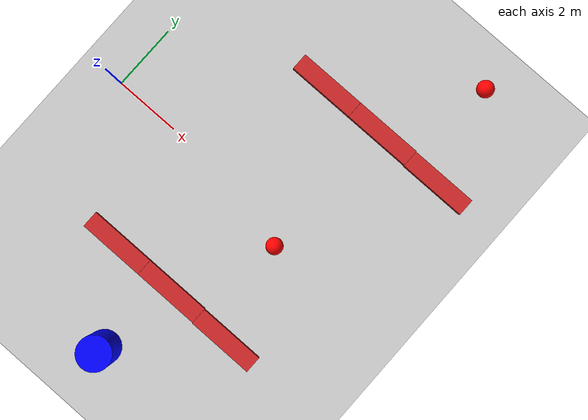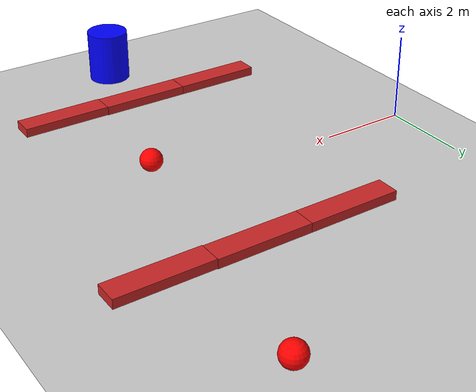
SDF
<sdf version="1.7">
 <world name="default">
  <light name="sun" type="directional">
   <pose>0 0 10 0 -0 0</pose>
   <diffuse>0.8 0.8 0.8 1</diffuse>
   <specular>0.2 0.2 0.2 1</specular>
   <attenuation>
    <range>1000</range>
    <constant>0.9</constant>
    <linear>0.01</linear>
    <quadratic>0.001</quadratic>
   </attenuation>
   <direction>-0.5 0.1 -0.9</direction>
   <spot><inner_angle>0</inner_angle><outer_angle>0</outer_angle><falloff>0</falloff></spot>
  </light>
  <model name="ground_plane">
   <static>1</static>
   <link name="link">
    <collision name="collision">
     <geometry><plane><normal>0 0 1</normal><size>100 100</size></plane></geometry>
     <surface><friction><ode><mu>100</mu><mu2>50</mu2></ode></friction></surface>
    </collision>
    <visual name="visual">
     <cast_shadows>0</cast_shadows>
     <geometry><plane><normal>0 0 1</normal><size>100 100</size></plane></geometry>
     <material>
      <script><uri>file://media/materials/scripts/gazebo.material</uri><name>Gazebo/Grey</name></script>
     </material>
    </visual>
   </link>
  </model>
  <gravity>0 0 -9.8</gravity>
  <magnetic_field>6e-06 2.3e-05 -4.2e-05</magnetic_field>
  <atmosphere type="adiabatic"/>
  <physics type="ode">
   <max_step_size>0.001</max_step_size>
   <real_time_factor>1</real_time_factor>
   <real_time_update_rate>1000</real_time_update_rate>
  </physics>
  <scene><ambient>0.4 0.4 0.4 1</ambient><background>0.7 0.7 0.7 1</background><shadows>1</shadows></scene>
  <audio><device>default</device></audio>
  <spherical_coordinates>
   <surface_model>EARTH_WGS84</surface_model>
   <latitude_deg>0</latitude_deg>
   <longitude_deg>0</longitude_deg>
   <elevation>0</elevation>
   <heading_deg>0</heading_deg>
  </spherical_coordinates>
  <model name="sidewalk">
   <link name="link_0">
    <inertial>
     <mass>1</mass>
     <inertia>
      <ixx>0.166667</ixx>
      <ixy>0</ixy>
      <ixz>0</ixz>
      <iyy>0.166667</iyy>
      <iyz>0</iyz>
      <izz>0.166667</izz>
     </inertia>
    </inertial>
    <pose>-2.32707 -0.694869 0 0 -0 0</pose>
    <visual name="visual">
     <geometry><box><size>2 0.5 0.2</size></box></geometry>
     <material>
      <lighting>1</lighting>
      <script><uri>file://media/materials/scripts/gazebo.material</uri><name>Gazebo/Red</name></script>
      <shader type="pixel"><normal_map>__default__</normal_map></shader>
      <ambient>0 1 0 1</ambient>
      <diffuse>0.7 0.7 0.7 1</diffuse>
      <specular>0.01 0.01 0.01 1</specular>
      <emissive>0 0 0 1</emissive>
     </material>
    </visual>
    <collision name="collision">
     <geometry><box><size>1 1 1</size></box></geometry>
     <surface>
      <friction>
       <ode><mu>1</mu><mu2>1</mu2><fdir1>0 0 0</fdir1><slip1>0</slip1><slip2>0</slip2></ode>
       <torsional>
        <coefficient>1</coefficient>
        <patch_radius>0</patch_radius>
        <surface_radius>0</surface_radius>
        <use_patch_radius>1</use_patch_radius>
        <ode><slip>0</slip></ode>
       </torsional>
      </friction>
      <bounce><restitution_coefficient>0</restitution_coefficient><threshold>1e+06</threshold></bounce>
      <contact>
       <collide_without_contact>0</collide_without_contact>
       <collide_without_contact_bitmask>1</collide_without_contact_bitmask>
       <collide_bitmask>1</collide_bitmask>
       <ode>
        <soft_cfm>0</soft_cfm>
        <soft_erp>0.2</soft_erp>
        <kp>1e+13</kp>
        <kd>1</kd>
        <max_vel>0.01</max_vel>
        <min_depth>0</min_depth>
       </ode>
       <bullet>
        <split_impulse>1</split_impulse>
        <split_impulse_penetration_threshold>-0.01</split_impulse_penetration_threshold>
        <soft_cfm>0</soft_cfm>
        <soft_erp>0.2</soft_erp>
        <kp>1e+13</kp>
        <kd>1</kd>
       </bullet>
      </contact>
     </surface>
    </collision>
   </link>
   <link name="link_0_clone">
    <inertial>
     <mass>1</mass>
     <inertia>
      <ixx>0.166667</ixx>
      <ixy>0</ixy>
      <ixz>0</ixz>
      <iyy>0.166667</iyy>
      <iyz>0</iyz>
      <izz>0.166667</izz>
     </inertia>
    </inertial>
    <pose>-0.324907 -0.694369 0 0 -0 0</pose>
    <visual name="visual">
     <geometry><box><size>2 0.5 0.2</size></box></geometry>
     <material>
      <lighting>1</lighting>
      <script><uri>file://media/materials/scripts/gazebo.material</uri><name>Gazebo/Red</name></script>
      <shader type="pixel"><normal_map>__default__</normal_map></shader>
      <ambient>0 1 0 1</ambient>
      <diffuse>0.7 0.7 0.7 1</diffuse>
      <specular>0.01 0.01 0.01 1</specular>
      <emissive>0 0 0 1</emissive>
     </material>
    </visual>
    <collision name="collision">
     <geometry><box><size>1 1 1</size></box></geometry>
     <surface>
      <friction>
       <ode><mu>1</mu><mu2>1</mu2><fdir1>0 0 0</fdir1><slip1>0</slip1><slip2>0</slip2></ode>
       <torsional>
        <coefficient>1</coefficient>
        <patch_radius>0</patch_radius>
        <surface_radius>0</surface_radius>
        <use_patch_radius>1</use_patch_radius>
        <ode><slip>0</slip></ode>
       </torsional>
      </friction>
      <bounce><restitution_coefficient>0</restitution_coefficient><threshold>1e+06</threshold></bounce>
      <contact>
       <collide_without_contact>0</collide_without_contact>
       <collide_without_contact_bitmask>1</collide_without_contact_bitmask>
       <collide_bitmask>1</collide_bitmask>
       <ode>
        <soft_cfm>0</soft_cfm>
        <soft_erp>0.2</soft_erp>
        <kp>1e+13</kp>
        <kd>1</kd>
        <max_vel>0.01</max_vel>
        <min_depth>0</min_depth>
       </ode>
       <bullet>
        <split_impulse>1</split_impulse>
        <split_impulse_penetration_threshold>-0.01</split_impulse_penetration_threshold>
        <soft_cfm>0</soft_cfm>
        <soft_erp>0.2</soft_erp>
        <kp>1e+13</kp>
        <kd>1</kd>
       </bullet>
      </contact>
     </surface>
    </collision>
   </link>
   <link name="link_0_clone_clone">
    <inertial>
     <mass>1</mass>
     <inertia>
      <ixx>0.166667</ixx>
      <ixy>0</ixy>
      <ixz>0</ixz>
      <iyy>0.166667</iyy>
      <iyz>0</iyz>
      <izz>0.166667</izz>
     </inertia>
    </inertial>
    <pose>1.67628 -0.71217 0 0 -0 0</pose>
    <visual name="visual">
     <geometry><box><size>2 0.5 0.2</size></box></geometry>
     <material>
      <lighting>1</lighting>
      <script><uri>file://media/materials/scripts/gazebo.material</uri><name>Gazebo/Red</name></script>
      <shader type="pixel"><normal_map>__default__</normal_map></shader>
      <ambient>0 1 0 1</ambient>
      <diffuse>0.7 0.7 0.7 1</diffuse>
      <specular>0.01 0.01 0.01 1</specular>
      <emissive>0 0 0 1</emissive>
     </material>
    </visual>
    <collision name="collision">
     <geometry><box><size>1 1 1</size></box></geometry>
     <surface>
      <friction>
       <ode><mu>1</mu><mu2>1</mu2><fdir1>0 0 0</fdir1><slip1>0</slip1><slip2>0</slip2></ode>
       <torsional>
        <coefficient>1</coefficient>
        <patch_radius>0</patch_radius>
        <surface_radius>0</surface_radius>
        <use_patch_radius>1</use_patch_radius>
        <ode><slip>0</slip></ode>
       </torsional>
      </friction>
      <bounce><restitution_coefficient>0</restitution_coefficient><threshold>1e+06</threshold></bounce>
      <contact>
       <collide_without_contact>0</collide_without_contact>
       <collide_without_contact_bitmask>1</collide_without_contact_bitmask>
       <collide_bitmask>1</collide_bitmask>
       <ode>
        <soft_cfm>0</soft_cfm>
        <soft_erp>0.2</soft_erp>
        <kp>1e+13</kp>
        <kd>1</kd>
        <max_vel>0.01</max_vel>
        <min_depth>0</min_depth>
       </ode>
       <bullet>
        <split_impulse>1</split_impulse>
        <split_impulse_penetration_threshold>-0.01</split_impulse_penetration_threshold>
        <soft_cfm>0</soft_cfm>
        <soft_erp>0.2</soft_erp>
        <kp>1e+13</kp>
        <kd>1</kd>
       </bullet>
      </contact>
     </surface>
    </collision>
   </link>
   <link name="link_1">
    <inertial>
     <mass>1</mass>
     <inertia><ixx>0.1</ixx><ixy>0</ixy><ixz>0</ixz><iyy>0.1</iyy><iyz>0</iyz><izz>0.1</izz></inertia>
    </inertial>
    <pose>0.975692 2.10141 0 0 -0 0</pose>
    <visual name="visual">
     <geometry><sphere><radius>0.25</radius></sphere></geometry>
     <material>
      <lighting>1</lighting>
      <script><uri>file://media/materials/scripts/gazebo.material</uri><name>Gazebo/Grey</name></script>
      <shader type="pixel"><normal_map>__default__</normal_map></shader>
      <ambient>1 0 0 1</ambient>
      <diffuse>0.7 0.7 0.7 1</diffuse>
      <specular>0.01 0.01 0.01 1</specular>
      <emissive>0 0 0 1</emissive>
     </material>
    </visual>
    <collision name="collision">
     <geometry><sphere><radius>0.5</radius></sphere></geometry>
     <surface>
      <friction>
       <ode><mu>1</mu><mu2>1</mu2><fdir1>0 0 0</fdir1><slip1>0</slip1><slip2>0</slip2></ode>
       <torsional>
        <coefficient>1</coefficient>
        <patch_radius>0</patch_radius>
        <surface_radius>0</surface_radius>
        <use_patch_radius>1</use_patch_radius>
        <ode><slip>0</slip></ode>
       </torsional>
      </friction>
      <bounce><restitution_coefficient>0</restitution_coefficient><threshold>1e+06</threshold></bounce>
      <contact>
       <collide_without_contact>0</collide_without_contact>
       <collide_without_contact_bitmask>1</collide_without_contact_bitmask>
       <collide_bitmask>1</collide_bitmask>
       <ode>
        <soft_cfm>0</soft_cfm>
        <soft_erp>0.2</soft_erp>
        <kp>1e+13</kp>
        <kd>1</kd>
        <max_vel>0.01</max_vel>
        <min_depth>0</min_depth>
       </ode>
       <bullet>
        <split_impulse>1</split_impulse>
        <split_impulse_penetration_threshold>-0.01</split_impulse_penetration_threshold>
        <soft_cfm>0</soft_cfm>
        <soft_erp>0.2</soft_erp>
        <kp>1e+13</kp>
        <kd>1</kd>
       </bullet>
      </contact>
     </surface>
    </collision>
   </link>
   <static>0</static>
   <pose>5.34929 -2.68076 0.5 0 -0 0</pose>
  </model>
  <model name="sidewalk_0">
   <link name="link_0">
    <inertial>
     <mass>1</mass>
     <inertia>
      <ixx>0.166667</ixx>
      <ixy>0</ixy>
      <ixz>0</ixz>
      <iyy>0.166667</iyy>
      <iyz>0</iyz>
      <izz>0.166667</izz>
     </inertia>
    </inertial>
    <pose>-2.32707 -0.694869 0 0 -0 0</pose>
    <visual name="visual">
     <geometry><box><size>2 0.5 0.2</size></box></geometry>
     <material>
      <lighting>1</lighting>
      <script><uri>file://media/materials/scripts/gazebo.material</uri><name>Gazebo/Red</name></script>
      <shader type="pixel"><normal_map>__default__</normal_map></shader>
      <ambient>0 1 0 1</ambient>
      <diffuse>0.7 0.7 0.7 1</diffuse>
      <specular>0.01 0.01 0.01 1</specular>
      <emissive>0 0 0 1</emissive>
     </material>
    </visual>
    <collision name="collision">
     <geometry><box><size>1 1 1</size></box></geometry>
     <surface>
      <friction>
       <ode><mu>1</mu><mu2>1</mu2><fdir1>0 0 0</fdir1><slip1>0</slip1><slip2>0</slip2></ode>
       <torsional>
        <coefficient>1</coefficient>
        <patch_radius>0</patch_radius>
        <surface_radius>0</surface_radius>
        <use_patch_radius>1</use_patch_radius>
        <ode><slip>0</slip></ode>
       </torsional>
      </friction>
      <bounce><restitution_coefficient>0</restitution_coefficient><threshold>1e+06</threshold></bounce>
      <contact>
       <collide_without_contact>0</collide_without_contact>
       <collide_without_contact_bitmask>1</collide_without_contact_bitmask>
       <collide_bitmask>1</collide_bitmask>
       <ode>
        <soft_cfm>0</soft_cfm>
        <soft_erp>0.2</soft_erp>
        <kp>1e+13</kp>
        <kd>1</kd>
        <max_vel>0.01</max_vel>
        <min_depth>0</min_depth>
       </ode>
       <bullet>
        <split_impulse>1</split_impulse>
        <split_impulse_penetration_threshold>-0.01</split_impulse_penetration_threshold>
        <soft_cfm>0</soft_cfm>
        <soft_erp>0.2</soft_erp>
        <kp>1e+13</kp>
        <kd>1</kd>
       </bullet>
      </contact>
     </surface>
    </collision>
   </link>
   <link name="link_0_clone">
    <inertial>
     <mass>1</mass>
     <inertia>
      <ixx>0.166667</ixx>
      <ixy>0</ixy>
      <ixz>0</ixz>
      <iyy>0.166667</iyy>
      <iyz>0</iyz>
      <izz>0.166667</izz>
     </inertia>
    </inertial>
    <pose>-0.324907 -0.694369 0 0 -0 0</pose>
    <visual name="visual">
     <geometry><box><size>2 0.5 0.2</size></box></geometry>
     <material>
      <lighting>1</lighting>
      <script><uri>file://media/materials/scripts/gazebo.material</uri><name>Gazebo/Red</name></script>
      <shader type="pixel"><normal_map>__default__</normal_map></shader>
      <ambient>0 1 0 1</ambient>
      <diffuse>0.7 0.7 0.7 1</diffuse>
      <specular>0.01 0.01 0.01 1</specular>
      <emissive>0 0 0 1</emissive>
     </material>
    </visual>
    <collision name="collision">
     <geometry><box><size>1 1 1</size></box></geometry>
     <surface>
      <friction>
       <ode><mu>1</mu><mu2>1</mu2><fdir1>0 0 0</fdir1><slip1>0</slip1><slip2>0</slip2></ode>
       <torsional>
        <coefficient>1</coefficient>
        <patch_radius>0</patch_radius>
        <surface_radius>0</surface_radius>
        <use_patch_radius>1</use_patch_radius>
        <ode><slip>0</slip></ode>
       </torsional>
      </friction>
      <bounce><restitution_coefficient>0</restitution_coefficient><threshold>1e+06</threshold></bounce>
      <contact>
       <collide_without_contact>0</collide_without_contact>
       <collide_without_contact_bitmask>1</collide_without_contact_bitmask>
       <collide_bitmask>1</collide_bitmask>
       <ode>
        <soft_cfm>0</soft_cfm>
        <soft_erp>0.2</soft_erp>
        <kp>1e+13</kp>
        <kd>1</kd>
        <max_vel>0.01</max_vel>
        <min_depth>0</min_depth>
       </ode>
       <bullet>
        <split_impulse>1</split_impulse>
        <split_impulse_penetration_threshold>-0.01</split_impulse_penetration_threshold>
        <soft_cfm>0</soft_cfm>
        <soft_erp>0.2</soft_erp>
        <kp>1e+13</kp>
        <kd>1</kd>
       </bullet>
      </contact>
     </surface>
    </collision>
   </link>
   <link name="link_0_clone_clone">
    <inertial>
     <mass>1</mass>
     <inertia>
      <ixx>0.166667</ixx>
      <ixy>0</ixy>
      <ixz>0</ixz>
      <iyy>0.166667</iyy>
      <iyz>0</iyz>
      <izz>0.166667</izz>
     </inertia>
    </inertial>
    <pose>1.67628 -0.71217 0 0 -0 0</pose>
    <visual name="visual">
     <geometry><box><size>2 0.5 0.2</size></box></geometry>
     <material>
      <lighting>1</lighting>
      <script><uri>file://media/materials/scripts/gazebo.material</uri><name>Gazebo/Red</name></script>
      <shader type="pixel"><normal_map>__default__</normal_map></shader>
      <ambient>0 1 0 1</ambient>
      <diffuse>0.7 0.7 0.7 1</diffuse>
      <specular>0.01 0.01 0.01 1</specular>
      <emissive>0 0 0 1</emissive>
     </material>
    </visual>
    <collision name="collision">
     <geometry><box><size>1 1 1</size></box></geometry>
     <surface>
      <friction>
       <ode><mu>1</mu><mu2>1</mu2><fdir1>0 0 0</fdir1><slip1>0</slip1><slip2>0</slip2></ode>
       <torsional>
        <coefficient>1</coefficient>
        <patch_radius>0</patch_radius>
        <surface_radius>0</surface_radius>
        <use_patch_radius>1</use_patch_radius>
        <ode><slip>0</slip></ode>
       </torsional>
      </friction>
      <bounce><restitution_coefficient>0</restitution_coefficient><threshold>1e+06</threshold></bounce>
      <contact>
       <collide_without_contact>0</collide_without_contact>
       <collide_without_contact_bitmask>1</collide_without_contact_bitmask>
       <collide_bitmask>1</collide_bitmask>
       <ode>
        <soft_cfm>0</soft_cfm>
        <soft_erp>0.2</soft_erp>
        <kp>1e+13</kp>
        <kd>1</kd>
        <max_vel>0.01</max_vel>
        <min_depth>0</min_depth>
       </ode>
       <bullet>
        <split_impulse>1</split_impulse>
        <split_impulse_penetration_threshold>-0.01</split_impulse_penetration_threshold>
        <soft_cfm>0</soft_cfm>
        <soft_erp>0.2</soft_erp>
        <kp>1e+13</kp>
        <kd>1</kd>
       </bullet>
      </contact>
     </surface>
    </collision>
   </link>
   <link name="link_1">
    <inertial>
     <mass>1</mass>
     <inertia><ixx>0.1</ixx><ixy>0</ixy><ixz>0</ixz><iyy>0.1</iyy><iyz>0</iyz><izz>0.1</izz></inertia>
    </inertial>
    <pose>0.975692 2.10141 0 0 -0 0</pose>
    <visual name="visual">
     <geometry><sphere><radius>0.25</radius></sphere></geometry>
     <material>
      <lighting>1</lighting>
      <script><uri>file://media/materials/scripts/gazebo.material</uri><name>Gazebo/Grey</name></script>
      <shader type="pixel"><normal_map>__default__</normal_map></shader>
      <ambient>1 0 0 1</ambient>
      <diffuse>0.7 0.7 0.7 1</diffuse>
      <specular>0.01 0.01 0.01 1</specular>
      <emissive>0 0 0 1</emissive>
     </material>
    </visual>
    <collision name="collision">
     <geometry><sphere><radius>0.5</radius></sphere></geometry>
     <surface>
      <friction>
       <ode><mu>1</mu><mu2>1</mu2><fdir1>0 0 0</fdir1><slip1>0</slip1><slip2>0</slip2></ode>
       <torsional>
        <coefficient>1</coefficient>
        <patch_radius>0</patch_radius>
        <surface_radius>0</surface_radius>
        <use_patch_radius>1</use_patch_radius>
        <ode><slip>0</slip></ode>
       </torsional>
      </friction>
      <bounce><restitution_coefficient>0</restitution_coefficient><threshold>1e+06</threshold></bounce>
      <contact>
       <collide_without_contact>0</collide_without_contact>
       <collide_without_contact_bitmask>1</collide_without_contact_bitmask>
       <collide_bitmask>1</collide_bitmask>
       <ode>
        <soft_cfm>0</soft_cfm>
        <soft_erp>0.2</soft_erp>
        <kp>1e+13</kp>
        <kd>1</kd>
        <max_vel>0.01</max_vel>
        <min_depth>0</min_depth>
       </ode>
       <bullet>
        <split_impulse>1</split_impulse>
        <split_impulse_penetration_threshold>-0.01</split_impulse_penetration_threshold>
        <soft_cfm>0</soft_cfm>
        <soft_erp>0.2</soft_erp>
        <kp>1e+13</kp>
        <kd>1</kd>
       </bullet>
      </contact>
     </surface>
    </collision>
   </link>
   <static>0</static>
   <pose>6.84463 4.33273 0.939732 0 -0 0</pose>
  </model>
  <model name="unit_cylinder">
   <link name="link">
    <inertial>
     <mass>1</mass>
     <inertia><ixx>0.145833</ixx><ixy>0</ixy><ixz>0</ixz><iyy>0.145833</iyy><iyz>0</iyz><izz>0.125</izz></inertia>
    </inertial>
    <visual name="visual">
     <geometry><cylinder><radius>0.5</radius><length>1.47</length></cylinder></geometry>
     <material>
      <script><name>Gazebo/Grey</name><uri>file://media/materials/scripts/gazebo.material</uri></script>
      <shader type="pixel"><normal_map>__default__</normal_map></shader>
      <ambient>0 0 1 1</ambient>
      <diffuse>0.7 0.7 0.7 1</diffuse>
      <specular>0.01 0.01 0.01 1</specular>
      <emissive>0 0 0 1</emissive>
     </material>
    </visual>
    <collision name="collision">
     <geometry><cylinder><radius>0.5</radius><length>1</length></cylinder></geometry>
     <surface>
      <friction>
       <ode><mu>1</mu><mu2>1</mu2><fdir1>0 0 0</fdir1><slip1>0</slip1><slip2>0</slip2></ode>
       <torsional>
        <coefficient>1</coefficient>
        <patch_radius>0</patch_radius>
        <surface_radius>0</surface_radius>
        <use_patch_radius>1</use_patch_radius>
        <ode><slip>0</slip></ode>
       </torsional>
      </friction>
      <bounce><restitution_coefficient>0</restitution_coefficient><threshold>1e+06</threshold></bounce>
      <contact>
       <collide_without_contact>0</collide_without_contact>
       <collide_without_contact_bitmask>1</collide_without_contact_bitmask>
       <collide_bitmask>1</collide_bitmask>
       <ode>
        <soft_cfm>0</soft_cfm>
        <soft_erp>0.2</soft_erp>
        <kp>1e+13</kp>
        <kd>1</kd>
        <max_vel>0.01</max_vel>
        <min_depth>0</min_depth>
       </ode>
       <bullet>
        <split_impulse>1</split_impulse>
        <split_impulse_penetration_threshold>-0.01</split_impulse_penetration_threshold>
        <soft_cfm>0</soft_cfm>
        <soft_erp>0.2</soft_erp>
        <kp>1e+13</kp>
        <kd>1</kd>
       </bullet>
      </contact>
     </surface>
    </collision>
   </link>
   <static>0</static>
   <pose>4.60864 -5.8618 0.5 0 -0 0</pose>
  </model>
 </world>
</sdf>
